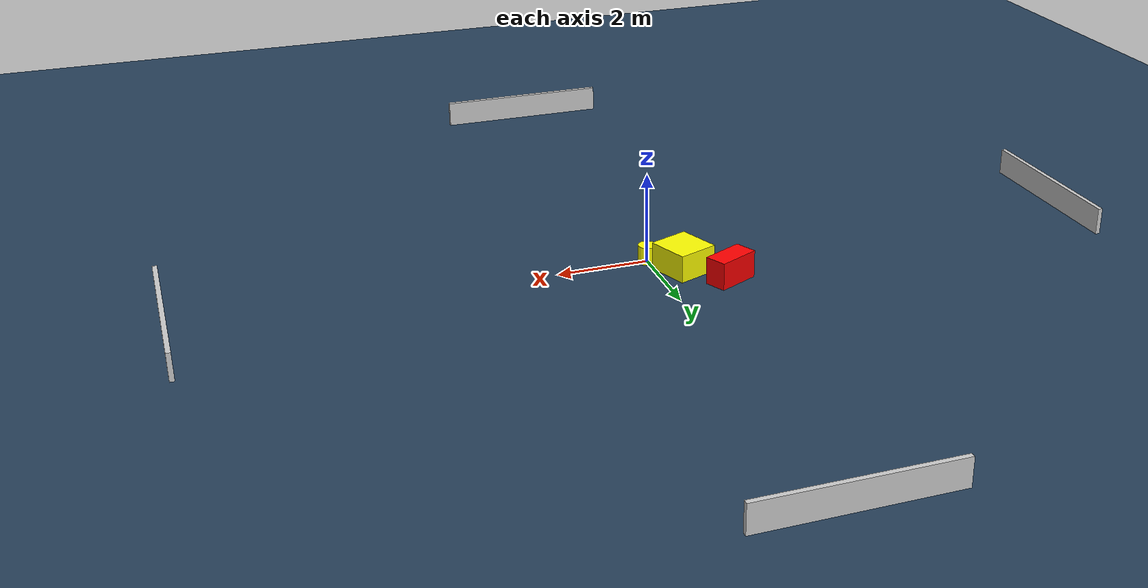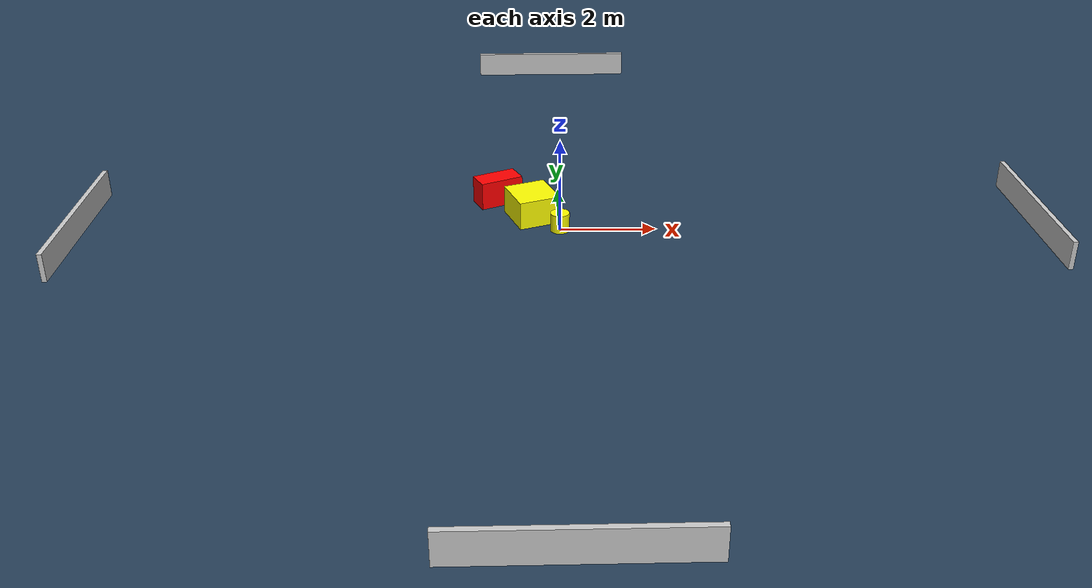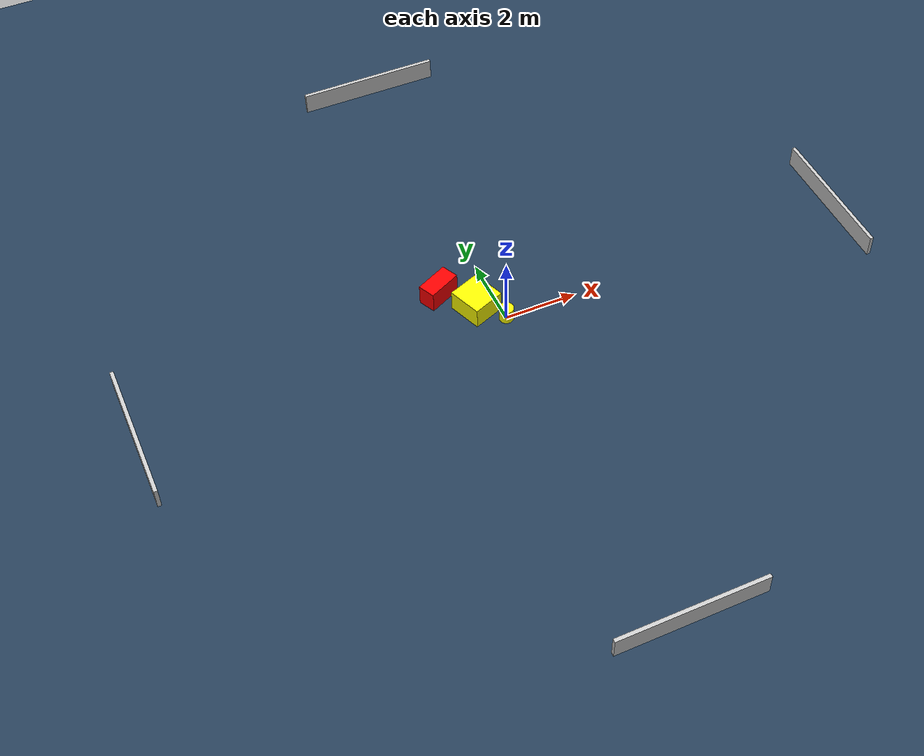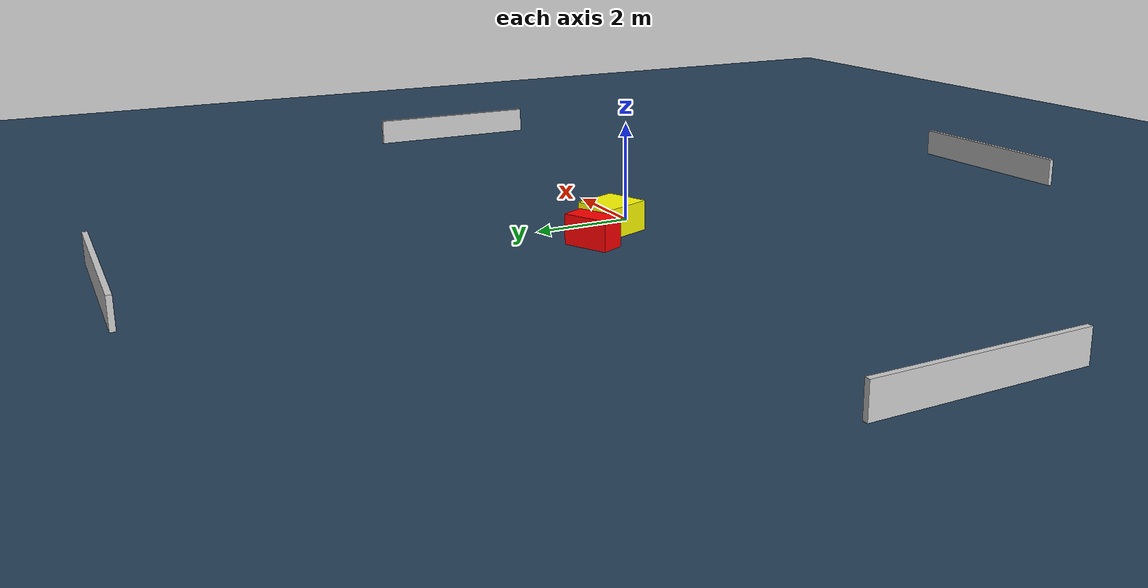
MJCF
<?xml version="1.0" ?>
<mujoco model="generated_environment">
  <option timestep="0.01" integrator="RK4" cone="elliptic"/>
  <default>
    <geom density="1"/>
  </default>
  <asset>
    <texture builtin="gradient" height="3072" name="skybox" rgb1="0.3 0.5 0.7" rgb2="0 0 0" type="skybox" width="512"/>
    <texture builtin="checker" height="300" name="groundplane" rgb1="0.2 0.3 0.4" rgb2="0.1 0.2 0.3" type="2d" width="300"/>
    <material name="groundplane" reflectance="0.2" texrepeat="5 5" texture="groundplane"/>
  </asset>
  <worldbody>
    <light dir="0 0 -1" directional="true" pos="0 0 1.5"/>
    <geom condim="3" friction="0.5 0.005 0.001" material="groundplane" name="floor" pos="0 0 0" size="0 0 0.05" type="plane"/>
    <body name="walls">
      <geom name="wall_1" condim="4" pos="-10.0 0.0 0.3" rgba="0.800000011920929 0.800000011920929 0.800000011920929 1.0" size="0.05 2.0 0.3" type="box"/>
      <geom name="wall_2" condim="4" pos="10.0 0.0 0.3" rgba="0.800000011920929 0.800000011920929 0.800000011920929 1.0" size="0.05 2.0 0.3" type="box"/>
      <geom name="wall_3" condim="4" pos="0.0 -10.0 0.3" rgba="0.800000011920929 0.800000011920929 0.800000011920929 1.0" size="2.0 0.05 0.3" type="box"/>
      <geom name="wall_4" condim="4" pos="0.0 10.0 0.3" rgba="0.800000011920929 0.800000011920929 0.800000011920929 1.0" size="2.0 0.05 0.3" type="box"/>
    </body>
    <body name="robot">
      <joint name="joint_x" type="slide" pos="0 0 0" axis="1 0 0"/>
      <joint name="joint_y" type="slide" pos="0 0 0" axis="0 1 0"/>
      <geom name="robot" type="cylinder" pos="0.0 0.0 0.2" size="0.2 0.2 0.0" mass="5.0" friction="1.0 0.005 0.0001" condim="4" rgba="1.0 1.0 0.0 1.0"/>
    </body>
    <body name="obstacle_1_movable">
      <geom name="obstacle_1_movable" condim="4" pos="-0.5770252481743013 0.6374210811497897 0.3" euler="0 0 201.13936589267476" friction="0.0 0.005 0.001" rgba="1.0 1.0 0.0 1.0" size="0.454271618276562 0.4797074857578743 0.3" type="box" mass="0.1"/>
      <joint type="free"/>
    </body>
    <body name="obstacle_2_static">
      <geom name="obstacle_2_static" condim="4" pos="-1.3264919280419643 1.446812056852182 0.3" euler="0 0 205.76586450221475" friction="0.0 0.005 0.001" rgba="1.0 0.0 0.0 1.0" size="0.47700651821632994 0.24476456493366583 0.3" type="box"/>
    </body>
  </worldbody>
  <actuator>
    <motor name="actuator_x" joint="joint_x" gear="1" ctrlrange="-1 1"/>
    <motor name="actuator_y" joint="joint_y" gear="1" ctrlrange="-1 1"/>
  </actuator>
</mujoco>
